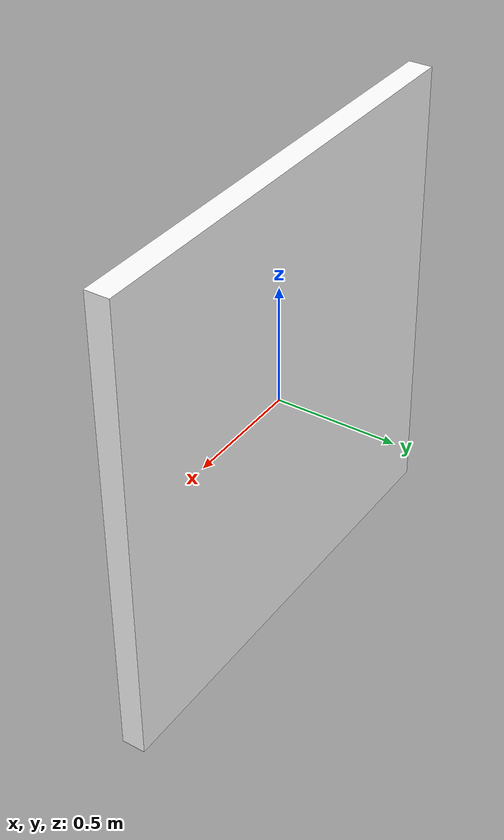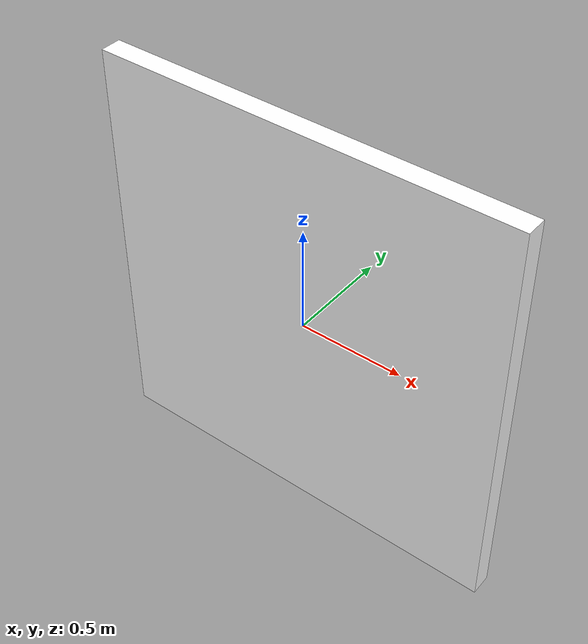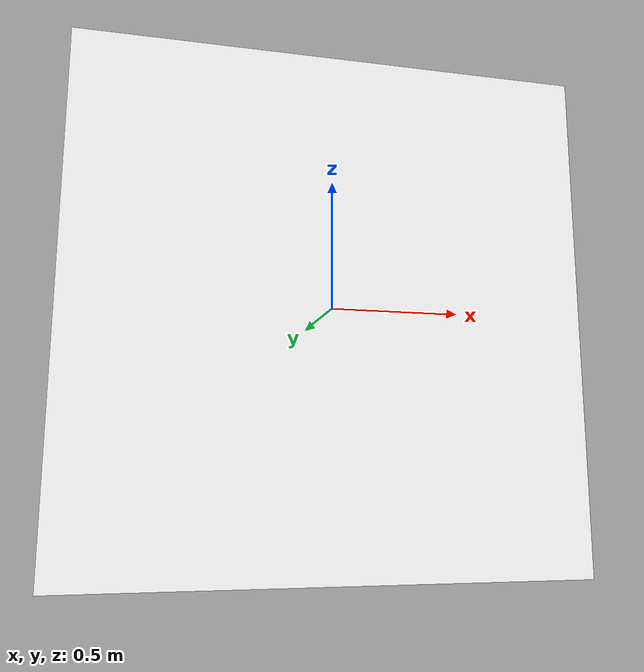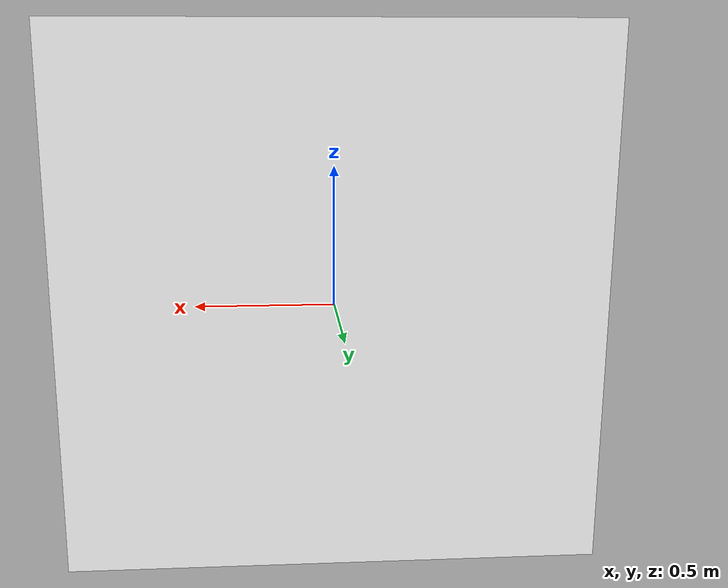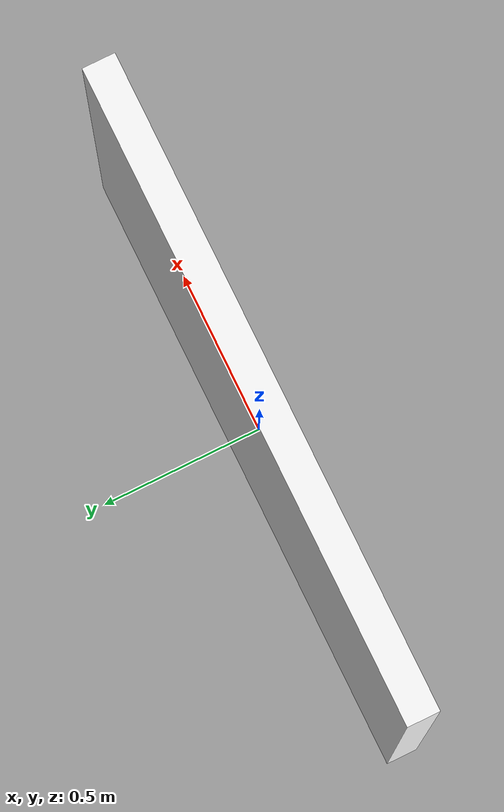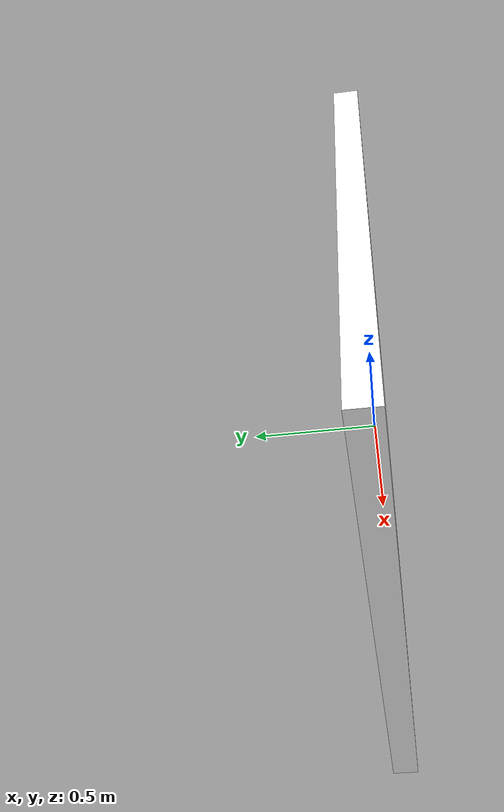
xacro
<?xml version="1.0"?>
<robot xmlns:xacro="http://ros.org/wiki/xacro" name="wall">
    <link name="wall_link">
        <visual>
            <geometry>
                <box size="2.0 0.1 2.0"/>
            </geometry>
            <material name="white">
                <color rgba="1 1 1 1"/>
            </material>
        </visual>
        <collision>
            <geometry>
                <box size="2.0 0.1 2.0"/>
            </geometry>
        </collision>
        <inertial>
            <mass value="10000.0"/>
            <origin xyz="0 0 0" rpy="0 0 0"/>
            <inertia
                ixx="10000.0"
                ixy="0.0"
                ixz="0.0"
                iyy="10000.0"
                iyz="0.0"
                izz="10000.0"/>
        </inertial>
    </link>
</robot>
